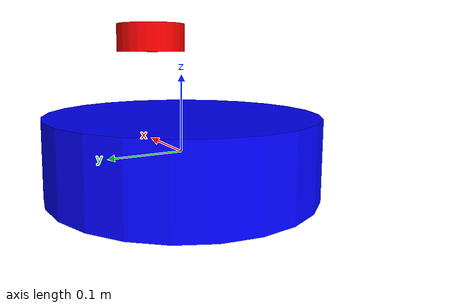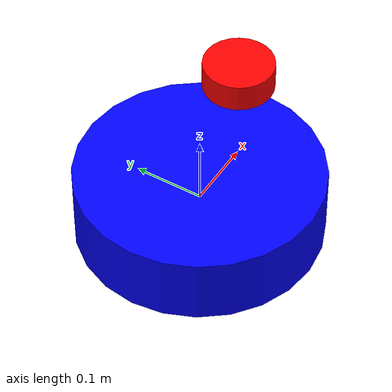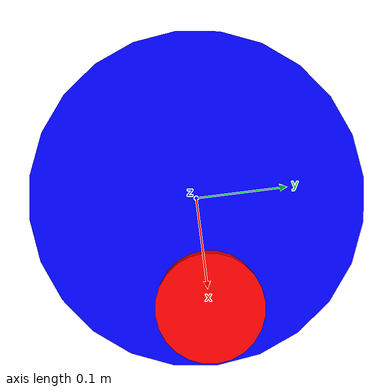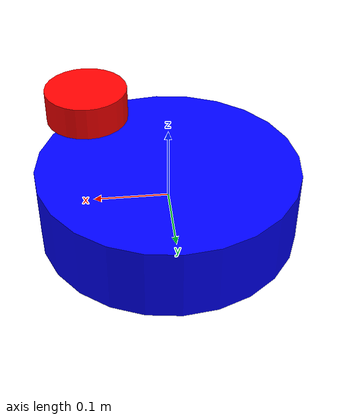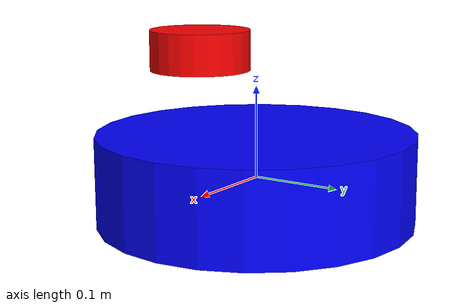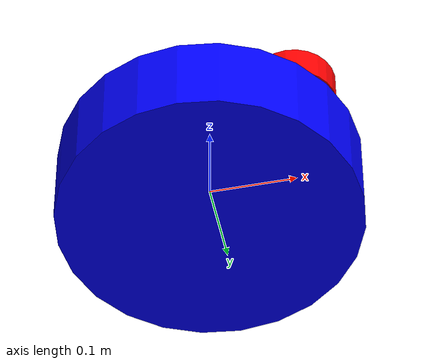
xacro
<?xml version="1.0"?>
<robot xmlns:xacro="http://www.ros.org/wiki/xacro" name="mobile_robot">

  <!-- 包含TurtleBot基础模型 -->
  <!-- 注意：这里我们创建一个简化的TurtleBot模型，实际项目中可以直接引用现有的TurtleBot包 -->

  <!-- 定义一些常用的属性 -->
  <xacro:property name="base_width" value="0.35"/>
  <xacro:property name="base_length" value="0.35"/>
  <xacro:property name="base_height" value="0.1"/>
  <xacro:property name="wheel_radius" value="0.033"/>
  <xacro:property name="wheel_width" value="0.023"/>
  <xacro:property name="wheel_separation" value="0.26"/>

  <!-- 基础底盘 -->
  <link name="base_link">
    <visual>
      <origin xyz="0 0 0" rpy="0 0 0"/>
      <geometry>
        <cylinder radius="${base_width/2}" length="${base_height}"/>
      </geometry>
      <material name="blue">
        <color rgba="0 0 1 1"/>
      </material>
    </visual>
    <collision>
      <origin xyz="0 0 0" rpy="0 0 0"/>
      <geometry>
        <cylinder radius="${base_width/2}" length="${base_height}"/>
      </geometry>
    </collision>
    <inertial>
      <mass value="2.2"/>
      <origin xyz="0 0 0" rpy="0 0 0"/>
      <inertia ixx="0.058640" ixy="0.000124" ixz="0.000615"
               iyy="0.058786" iyz="0.000014" izz="1.532440"/>
    </inertial>
  </link>

  <!-- 左轮 -->
  <link name="left_wheel">
    <visual>
      <origin xyz="0 0 0" rpy="1.5707 0 0"/>
      <geometry>
        <cylinder radius="${wheel_radius}" length="${wheel_width}"/>
      </geometry>
      <material name="black">
        <color rgba="0 0 0 1"/>
      </material>
    </visual>
    <collision>
      <origin xyz="0 0 0" rpy="1.5707 0 0"/>
      <geometry>
        <cylinder radius="${wheel_radius}" length="${wheel_width}"/>
      </geometry>
    </collision>
    <inertial>
      <mass value="0.01"/>
      <origin xyz="0 0 0" rpy="0 0 0"/>
      <inertia ixx="0.001" ixy="0" ixz="0"
               iyy="0.001" iyz="0" izz="0.001"/>
    </inertial>
  </link>

  <!-- 右轮 -->
  <link name="right_wheel">
    <visual>
      <origin xyz="0 0 0" rpy="1.5707 0 0"/>
      <geometry>
        <cylinder radius="${wheel_radius}" length="${wheel_width}"/>
      </geometry>
      <material name="black">
        <color rgba="0 0 0 1"/>
      </material>
    </visual>
    <collision>
      <origin xyz="0 0 0" rpy="1.5707 0 0"/>
      <geometry>
        <cylinder radius="${wheel_radius}" length="${wheel_width}"/>
      </geometry>
    </collision>
    <inertial>
      <mass value="0.01"/>
      <origin xyz="0 0 0" rpy="0 0 0"/>
      <inertia ixx="0.001" ixy="0" ixz="0"
               iyy="0.001" iyz="0" izz="0.001"/>
    </inertial>
  </link>

  <!-- 激光雷达 -->
  <link name="laser_link">
    <visual>
      <origin xyz="0 0 0" rpy="0 0 0"/>
      <geometry>
        <cylinder radius="0.05" length="0.04"/>
      </geometry>
      <material name="red">
        <color rgba="1 0 0 1"/>
      </material>
    </visual>
    <collision>
      <origin xyz="0 0 0" rpy="0 0 0"/>
      <geometry>
        <cylinder radius="0.05" length="0.04"/>
      </geometry>
    </collision>
    <inertial>
      <mass value="0.1"/>
      <origin xyz="0 0 0" rpy="0 0 0"/>
      <inertia ixx="0.001" ixy="0" ixz="0"
               iyy="0.001" iyz="0" izz="0.001"/>
    </inertial>
  </link>

  <!-- 关节定义 -->
  <joint name="left_wheel_joint" type="continuous">
    <parent link="base_link"/>
    <child link="left_wheel"/>
    <origin xyz="0 ${wheel_separation/2} 0" rpy="0 0 0"/>
    <axis xyz="0 1 0"/>
  </joint>

  <joint name="right_wheel_joint" type="continuous">
    <parent link="base_link"/>
    <child link="right_wheel"/>
    <origin xyz="0 -${wheel_separation/2} 0" rpy="0 0 0"/>
    <axis xyz="0 1 0"/>
  </joint>

  <joint name="laser_joint" type="fixed">
    <parent link="base_link"/>
    <child link="laser_link"/>
    <origin xyz="0.1 0 0.15" rpy="0 0 0"/>
  </joint>

  <!-- Gazebo插件 -->
  <gazebo>
    <plugin name="differential_drive_controller" filename="libgazebo_ros_diff_drive.so">
      <ros>
        <namespace>/</namespace>
      </ros>
      <left_joint>left_wheel_joint</left_joint>
      <right_joint>right_wheel_joint</right_joint>
      <wheel_separation>${wheel_separation}</wheel_separation>
      <wheel_diameter>${2*wheel_radius}</wheel_diameter>
      <max_wheel_torque>20</max_wheel_torque>
      <max_wheel_acceleration>1.0</max_wheel_acceleration>
      <command_topic>cmd_vel</command_topic>
      <publish_odom>true</publish_odom>
      <publish_odom_tf>true</publish_odom_tf>
      <publish_wheel_tf>false</publish_wheel_tf>
      <odometry_topic>odom</odometry_topic>
      <odometry_frame>odom</odometry_frame>
      <robot_base_frame>base_link</robot_base_frame>
    </plugin>
  </gazebo>

  <!-- 激光雷达传感器 -->
  <gazebo reference="laser_link">
    <sensor type="ray" name="laser_sensor">
      <pose>0 0 0 0 0 0</pose>
      <visualize>true</visualize>
      <update_rate>20</update_rate>
      <ray>
        <scan>
          <horizontal>
            <samples>360</samples>
            <resolution>1</resolution>
            <min_angle>-3.14159</min_angle>
            <max_angle>3.14159</max_angle>
          </horizontal>
        </scan>
        <range>
          <min>0.08</min>
          <max>10.0</max>
          <resolution>0.01</resolution>
        </range>
        <noise>
          <type>gaussian</type>
          <mean>0.0</mean>
          <stddev>0.01</stddev>
        </noise>
      </ray>
      <plugin name="gazebo_ros_laser" filename="libgazebo_ros_ray_sensor.so">
        <ros>
          <namespace>/</namespace>
          <argument>~/out:=scan</argument>
        </ros>
        <output_type>sensor_msgs/LaserScan</output_type>
        <frame_name>laser_link</frame_name>
      </plugin>
    </sensor>
  </gazebo>

  <!-- 材质定义 -->
  <gazebo reference="base_link">
    <material>Gazebo/Blue</material>
  </gazebo>

  <gazebo reference="left_wheel">
    <material>Gazebo/Black</material>
  </gazebo>

  <gazebo reference="right_wheel">
    <material>Gazebo/Black</material>
  </gazebo>

  <gazebo reference="laser_link">
    <material>Gazebo/Red</material>
  </gazebo>

</robot>
